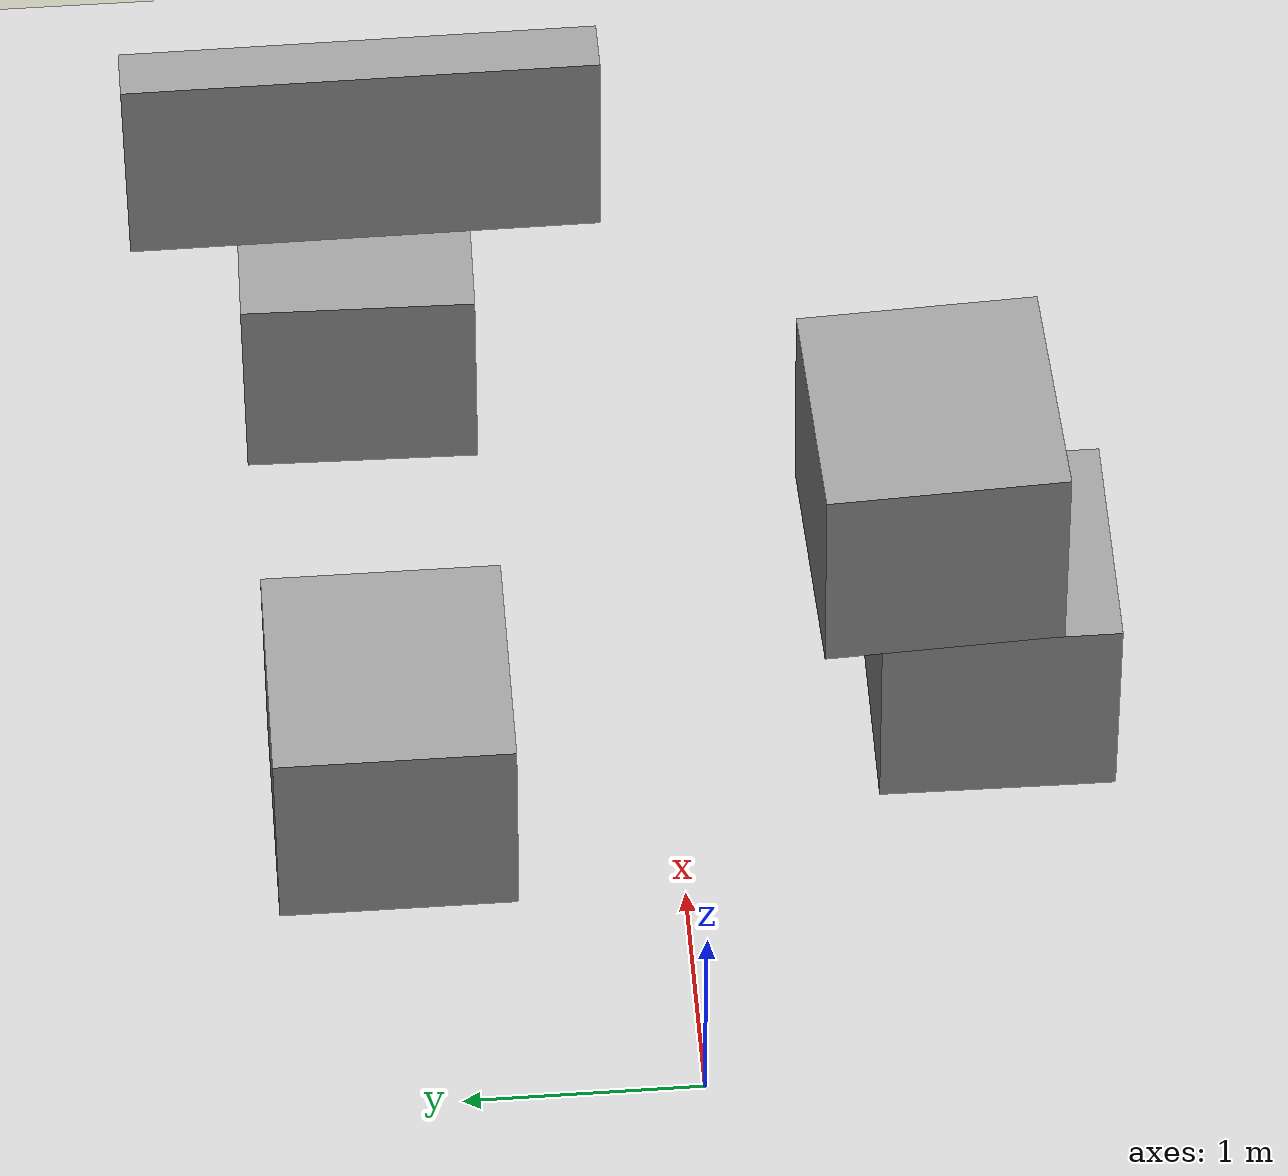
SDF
<sdf version="1.7">
 <world name="default">
  <light name="sun" type="directional">
   <pose>0 0 10 0 -0 0</pose>
   <diffuse>0.8 0.8 0.8 1</diffuse>
   <specular>0.2 0.2 0.2 1</specular>
   <attenuation>
    <range>1000</range>
    <constant>0.9</constant>
    <linear>0.01</linear>
    <quadratic>0.001</quadratic>
   </attenuation>
   <direction>-0.5 0.1 -0.9</direction>
   <spot><inner_angle>0</inner_angle><outer_angle>0</outer_angle><falloff>0</falloff></spot>
  </light>
  <model name="ground_plane">
   <static>1</static>
   <link name="link">
    <collision name="collision">
     <geometry><plane><normal>0 0 1</normal><size>100 100</size></plane></geometry>
     <surface>
      <contact><collide_bitmask>65535</collide_bitmask></contact>
      <friction><ode><mu>100</mu><mu2>50</mu2></ode></friction>
     </surface>
    </collision>
    <visual name="visual">
     <cast_shadows>0</cast_shadows>
     <geometry><plane><normal>0 0 1</normal><size>100 100</size></plane></geometry>
     <material>
      <script><uri>file://media/materials/scripts/gazebo.material</uri><name>Gazebo/Grey</name></script>
     </material>
    </visual>
   </link>
  </model>
  <gravity>0 0 -9.8</gravity>
  <magnetic_field>6e-06 2.3e-05 -4.2e-05</magnetic_field>
  <atmosphere type="adiabatic"/>
  <physics type="ode">
   <max_step_size>0.001</max_step_size>
   <real_time_factor>1</real_time_factor>
   <real_time_update_rate>1000</real_time_update_rate>
  </physics>
  <scene><ambient>0.4 0.4 0.4 1</ambient><background>0.7 0.7 0.7 1</background><shadows>1</shadows></scene>
  <spherical_coordinates>
   <surface_model>EARTH_WGS84</surface_model>
   <latitude_deg>0</latitude_deg>
   <longitude_deg>0</longitude_deg>
   <elevation>0</elevation>
   <heading_deg>0</heading_deg>
  </spherical_coordinates>
  <model name="unit_box">
   <pose>1.5105 1.19999 0.499995 0 1e-05 0</pose>
   <link name="link">
    <inertial>
     <mass>1</mass>
     <inertia>
      <ixx>0.166667</ixx>
      <ixy>0</ixy>
      <ixz>0</ixz>
      <iyy>0.166667</iyy>
      <iyz>0</iyz>
      <izz>0.166667</izz>
     </inertia>
    </inertial>
    <collision name="collision"><geometry><box><size>1 1 1</size></box></geometry></collision>
    <visual name="visual">
     <geometry><box><size>1 1 1</size></box></geometry>
     <material>
      <script><name>Gazebo/Grey</name><uri>file://media/materials/scripts/gazebo.material</uri></script>
     </material>
    </visual>
   </link>
  </model>
  <model name="unit_box_0">
   <pose>1.96068 -1.35543 0.490209 -0.011878 -0.001012 -0.008841</pose>
   <link name="link">
    <inertial>
     <mass>1</mass>
     <inertia>
      <ixx>0.166667</ixx>
      <ixy>0</ixy>
      <ixz>0</ixz>
      <iyy>0.166667</iyy>
      <iyz>0</iyz>
      <izz>0.166667</izz>
     </inertia>
    </inertial>
    <collision name="collision"><geometry><box><size>1 1 1</size></box></geometry></collision>
    <visual name="visual">
     <geometry><box><size>1 1 1</size></box></geometry>
     <material>
      <script><name>Gazebo/Grey</name><uri>file://media/materials/scripts/gazebo.material</uri></script>
     </material>
    </visual>
   </link>
  </model>
  <model name="unit_box_1">
   <pose>3.96544 1.20364 0.500005 3e-06 8e-06 -0.017782</pose>
   <link name="link">
    <inertial>
     <mass>1</mass>
     <inertia>
      <ixx>0.166667</ixx>
      <ixy>0</ixy>
      <ixz>0</ixz>
      <iyy>0.166667</iyy>
      <iyz>0</iyz>
      <izz>0.166667</izz>
     </inertia>
    </inertial>
    <collision name="collision"><geometry><box><size>1 1 1</size></box></geometry></collision>
    <visual name="visual">
     <geometry><box><size>1 1 1</size></box></geometry>
     <material>
      <script><name>Gazebo/Grey</name><uri>file://media/materials/scripts/gazebo.material</uri></script>
     </material>
    </visual>
   </link>
  </model>
  <model name="unit_box_2">
   <pose>1.94158 -1.08026 1.48695 -0.011943 -0.000487 0.035426</pose>
   <link name="link">
    <inertial>
     <mass>1</mass>
     <inertia>
      <ixx>0.166667</ixx>
      <ixy>0</ixy>
      <ixz>0</ixz>
      <iyy>0.166667</iyy>
      <iyz>0</iyz>
      <izz>0.166667</izz>
     </inertia>
    </inertial>
    <collision name="collision"><geometry><box><size>1 1 1</size></box></geometry></collision>
    <visual name="visual">
     <geometry><box><size>1 1 1</size></box></geometry>
     <material>
      <script><name>Gazebo/Grey</name><uri>file://media/materials/scripts/gazebo.material</uri></script>
     </material>
    </visual>
   </link>
  </model>
  <model name="unit_box_3">
   <pose>3.98396 1.15528 1.49998 -1.5e-05 3.9e-05 -1.56327</pose>
   <link name="link">
    <inertial>
     <mass>1</mass>
     <inertia>
      <ixx>0.166667</ixx>
      <ixy>0</ixy>
      <ixz>0</ixz>
      <iyy>0.166667</iyy>
      <iyz>0</iyz>
      <izz>0.166667</izz>
     </inertia>
    </inertial>
    <collision name="collision"><geometry><box><size>2.02075 0.224832 1</size></box></geometry></collision>
    <visual name="visual">
     <geometry><box><size>2.02075 0.224832 1</size></box></geometry>
     <material>
      <script><name>Gazebo/Grey</name><uri>file://media/materials/scripts/gazebo.material</uri></script>
     </material>
    </visual>
   </link>
  </model>
 </world>
</sdf>
